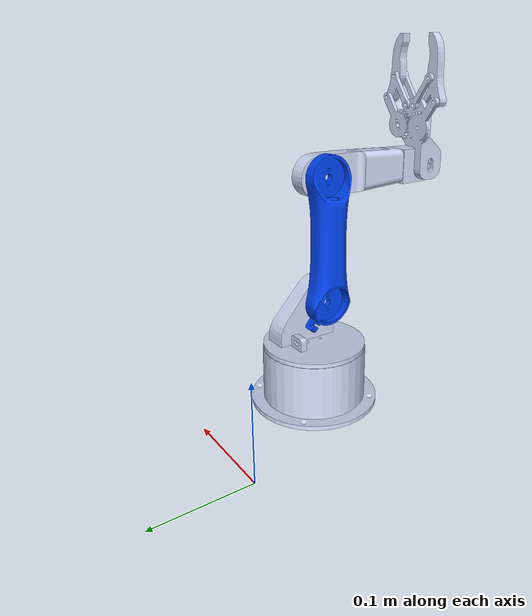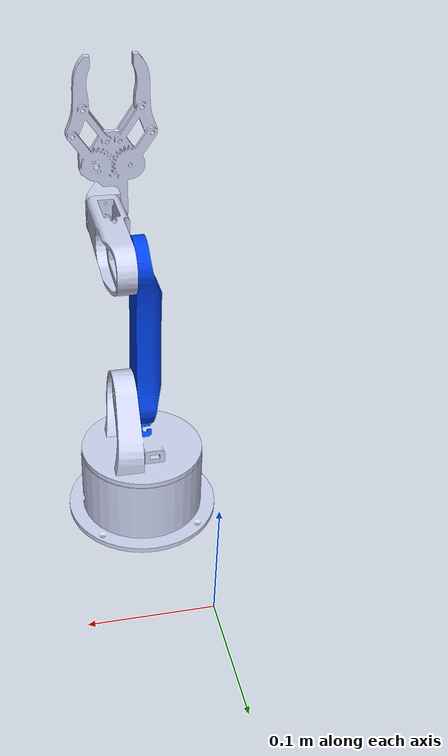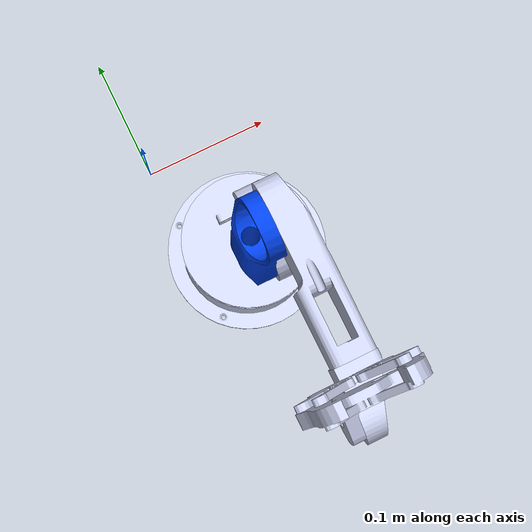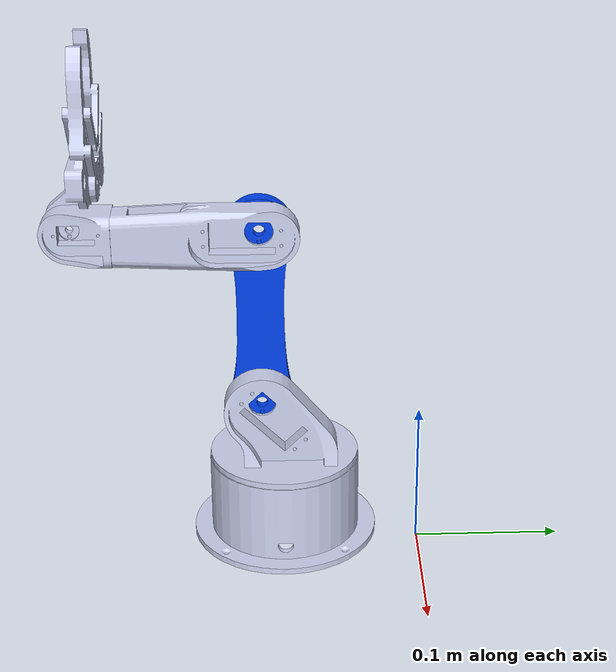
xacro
<?xml version="1.0" encoding="utf-8"?>
<robot
  name="arm_urdf">
    <link name="world"/>
  <link
    name="base_link">
    <inertial>
      <origin
        xyz="0 0 0"
        rpy="0 0 0" />
      <mass
        value="0.096037" />
      <inertia
        ixx="0.00012799"
        ixy="3.914E-06"
        ixz="-6.8451E-11"
        iyy="0.00020798"
        iyz="-4.4734E-12"
        izz="0.00013766" />
    </inertial>
    <visual>
      <origin
        xyz="0 0 0"
        rpy="0 0 0" />
      <geometry>
        <mesh
          filename="package://arm_urdf/meshes/base_link.STL" />
      </geometry>
      <material
        name="">
        <color
          rgba="0.79216 0.81961 0.93333 1" />
      </material>
    </visual>
    <collision>
      <origin
        xyz="0 0 0"
        rpy="0 0 0" />
      <geometry>
        <mesh
          filename="package://arm_urdf/meshes/base_link.STL" />
      </geometry>
    </collision>
  </link>
  <joint name="base_joint" type="fixed">
    <origin xyz="0.0 0.0 0"/>
    <parent link="world"/>
    <child link="base_link"/>
  </joint>
  <link
    name="link_1">
    <inertial>
      <origin
        xyz="-0.0064346 0.017289 -0.001372"
        rpy="0 0 0" />
      <mass
        value="0.068038" />
      <inertia
        ixx="5.8133E-05"
        ixy="5.1777E-06"
        ixz="-6.4176E-07"
        iyy="5.4676E-05"
        iyz="6.2427E-06"
        izz="4.5018E-05" />
        <geometry>
          <mesh
            filename="package://arm_urdf/meshes/link_1.STL" />
        </geometry>
    </inertial>
    <visual>
      <origin
        xyz="0 0 0"
        rpy="0 0 0" />
      <geometry>
        <mesh
          filename="package://arm_urdf/meshes/link_1.STL" />
      </geometry>
      <material
        name="">
        <color
          rgba="0.79216 0.81961 0.93333 1" />
      </material>
    </visual>
    <collision>
      <origin
        xyz="0 0 0"
        rpy="0 0 0" />
      <geometry>
        <mesh
          filename="package://arm_urdf/meshes/link_1.STL" />
      </geometry>
    </collision>
  </link>
   <joint
    name="joint_1"
    type="revolute">
    <origin
      xyz="0.040779 -0.09288 0.092108"
      rpy="1.5708 0 3.1416" />
    <parent
      link="base_link" />
    <child
      link="link_1" />
    <axis
      xyz="0 1 0" />
    <limit
      lower="-6.28"
      upper="6.28"
      effort="300"
      velocity="3" />
      <dynamics damping="1" friction="1"/>
  </joint>
  <link
    name="link_2">
    <inertial>
      <origin
        xyz="-0.00013011 -0.05859 -0.0037688"
        rpy="0 0 0" />
      <mass
        value="0.064393" />
      <inertia
        ixx="0.00010704"
        ixy="1.6548E-09"
        ixz="-2.3843E-10"
        iyy="9.11E-06"
        iyz="2.3961E-07"
        izz="0.00011184" />
    </inertial>
    <visual>
      <origin
        xyz="0 0 0"
        rpy="0 0 0" />
      <geometry>
        <mesh
          filename="package://arm_urdf/meshes/link_2.STL" />
      </geometry>
      <material
        name="">
        <color
          rgba="0 0.2549 0.92157 1" />
      </material>
    </visual>
    <collision>
      <origin
        xyz="0 0 0"
        rpy="0 0 0" />
      <geometry>
        <mesh
          filename="package://arm_urdf/meshes/link_2.STL" />
      </geometry>
    </collision>
  </link>
  <joint
    name="joint_2"
    type="revolute">
    <origin
      xyz="0 0.040276 -0.013919"
      rpy="3.1416 1.5708 0" />
    <parent
      link="link_1" />
    <child
      link="link_2" />
    <axis
      xyz="0 0 1" />
    <limit
      lower="-6.28"
      upper="6.28"
      effort="200"
      velocity="3" />
      <dynamics damping="1" friction="1"/>
  </joint>
  <link
    name="link_3">
    <inertial>
      <origin
        xyz="2.7847E-05 0.039285 0.011409"
        rpy="0 0 0" />
      <mass
        value="0.050268" />
      <inertia
        ixx="5.4601E-05"
        ixy="-6.9584E-08"
        ixz="-5.4545E-11"
        iyy="9.2868E-06"
        iyz="-2.8753E-07"
        izz="5.8149E-05" />
    </inertial>
    <visual>
      <origin
        xyz="0 0 0"
        rpy="0 0 0" />
      <geometry>
        <mesh
          filename="package://arm_urdf/meshes/link_3.STL" />
      </geometry>
      <material
        name="">
        <color
          rgba="0.79216 0.81961 0.93333 1" />
      </material>
    </visual>
    <collision>
      <origin
        xyz="0 0 0"
        rpy="0 0 0" />
      <geometry>
        <mesh
          filename="package://arm_urdf/meshes/link_3.STL" />
      </geometry>
    </collision>
  </link>
  <joint
    name="joint_3"
    type="revolute">
    <origin
      xyz="0 -0.12 0"
      rpy="0 0 -1.5708" />
    <parent
      link="link_2" />
    <child
      link="link_3" />
    <axis
      xyz="0 0 1" />
    <limit
      lower="-6.28"
      upper="6.28"
      effort="200"
      velocity="3" />
      <dynamics damping="1" friction="1"/>
  </joint>
  <link
    name="link_4">
    <inertial>
      <origin
        xyz="0.0050459 0.017841 -0.0052646"
        rpy="0 0 0" />
      <mass
        value="0.016499" />
      <inertia
        ixx="3.9122E-06"
        ixy="1.1583E-08"
        ixz="-3.9826E-09"
        iyy="2.6124E-06"
        iyz="5.7579E-07"
        izz="5.0223E-06" />
    </inertial>
    <visual>
      <origin
        xyz="0 0 0"
        rpy="0 0 0" />
      <geometry>
        <mesh
          filename="package://arm_urdf/meshes/link_4.STL" />
      </geometry>
      <material
        name="">
        <color
          rgba="0.79216 0.81961 0.93333 1" />
      </material>
    </visual>
    <collision>
      <origin
        xyz="0 0 0"
        rpy="0 0 0" />
      <geometry>
        <mesh
          filename="package://arm_urdf/meshes/link_4.STL" />
      </geometry>
    </collision>
  </link>
  <joint
    name="joint_4"
    type="revolute">
    <origin
      xyz="-0.0053 0.08975 0.0115"
      rpy="0 0 0" />
    <parent
      link="link_3" />
    <child
      link="link_4" />
    <axis
      xyz="0 1 0" />
    <limit
      lower="-6.28"
      upper="6.28"
      effort="200"
      velocity="3" />
      <dynamics damping="1" friction="1"/>
  </joint>
  <link
    name="link_5">
    <inertial>
      <origin
        xyz="-0.010858 0.010835 0.051171"
        rpy="0 0 0" />
      <mass
        value="0.034918" />
      <inertia
        ixx="4.1852E-05"
        ixy="-5.22E-07"
        ixz="-2.2636E-06"
        iyy="5.1196E-05"
        iyz="-4.3234E-06"
        izz="1.3175E-05" />
    </inertial>
    <visual>
      <origin
        xyz="0 0 0"
        rpy="0 0 0" />
      <geometry>
        <mesh
          filename="package://arm_urdf/meshes/link_5.STL" />
      </geometry>
      <material
        name="">
        <color
          rgba="0.79216 0.81961 0.93333 1" />
      </material>
    </visual>
    <collision>
      <origin
        xyz="0 0 0"
        rpy="0 0 0" />
      <geometry>
        <mesh
          filename="package://arm_urdf/meshes/link_5.STL" />
      </geometry>
    </collision>
  </link>
   <joint
    name="joint_5"
    type="revolute">
    <origin
      xyz="0.005 0.028 0"
      rpy="3.1416 -1.5708 0" />
    <parent
      link="link_4" />
    <child
      link="link_5" />
    <axis
      xyz="1 0 0" />
    <limit
      lower="-6.28"
      upper="6.28"
      effort="200"
      velocity="3" />
      <dynamics damping="1" friction="1"/>
  </joint>

        <gazebo reference="world"> <gravity>0</gravity> </gazebo>
        <gazebo reference="base_link"> <gravity>0</gravity> </gazebo>
        <gazebo reference="link_1"> <gravity>0</gravity> </gazebo>
        <gazebo reference="link_2"> <gravity>0</gravity> </gazebo>
        <gazebo reference="link_3"> <gravity>0</gravity> </gazebo>
        <gazebo reference="link_4"> <gravity>0</gravity> </gazebo>
        <gazebo reference="link_5"> <gravity>0</gravity> </gazebo>

        <gazebo>
          <plugin name="gazebo_ros_joint_pose_trajectory"
              filename="libgazebo_ros_joint_pose_trajectory.so">
              <update_rate>20</update_rate>
          </plugin>
      </gazebo>

        <gazebo>
          <plugin name="gazebo_ros_joint_state_publisher"
              filename="libgazebo_ros_joint_state_publisher.so">
              <update_rate>20</update_rate>
              <joint_name>joint_1</joint_name>
              <joint_name>joint_2</joint_name>
              <joint_name>joint_3</joint_name>
              <joint_name>joint_4</joint_name>
              <joint_name>joint_5</joint_name>
          </plugin>
      </gazebo>

</robot>
